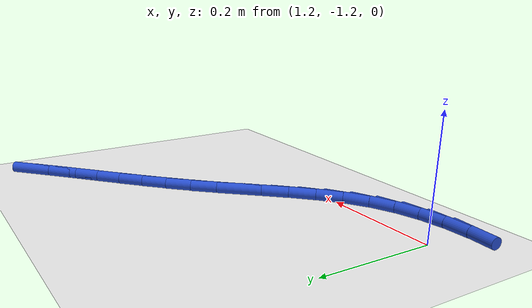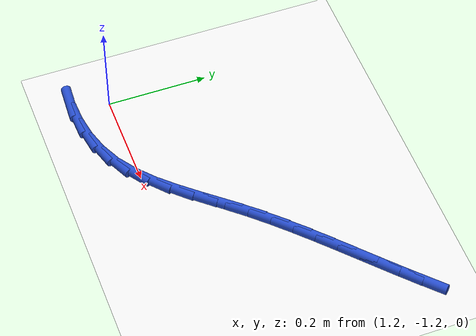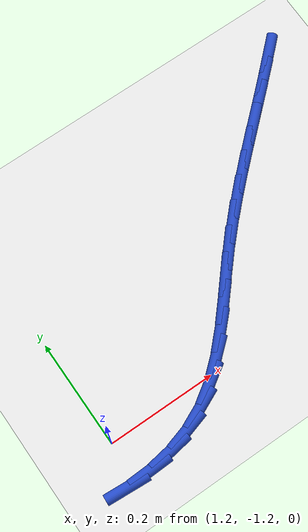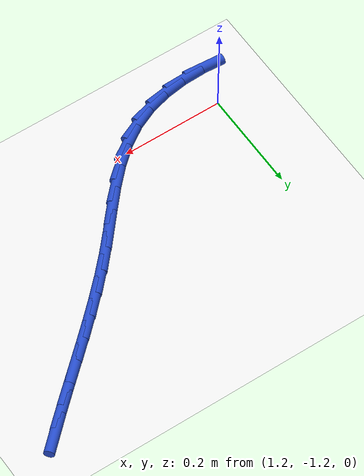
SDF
<sdf version="1.6">
 <world name="default">
  <model name="ground_plane">
   <static>1</static>
   <link name="link">
    <collision name="collision">
     <geometry><plane><normal>0 0 1</normal><size>100 100</size></plane></geometry>
     <surface><friction><ode><mu>100</mu><mu2>50</mu2></ode></friction></surface>
    </collision>
    <visual name="visual">
     <cast_shadows>0</cast_shadows>
     <geometry><plane><normal>0 0 1</normal><size>100 100</size></plane></geometry>
     <material>
      <script><uri>file://media/materials/scripts/gazebo.material</uri><name>Gazebo/WhiteGlow</name></script>
     </material>
    </visual>
   </link>
  </model>
  <model name="line">
   <link name="link_93">
    <pose>1.8208037211501102 -0.7848784728706968 0.01 0 1.57 0.7536164725874797</pose>
    <collision name="collision">
     <geometry><cylinder><radius>0.01</radius><length>0.08</length></cylinder></geometry>
    </collision>
    <visual name="visual">
     <material>
      <script><name>Gazebo/Blue</name><uri>file://media/materials/scripts/gazebo.material</uri></script>
     </material>
     <geometry><cylinder><radius>0.01</radius><length>0.08</length></cylinder></geometry>
    </visual>
   </link>
   <link name="link_94">
    <pose>1.7867566849743066 -0.816827341133086 0.01 0 1.57 0.7397805859282367</pose>
    <collision name="collision">
     <geometry><cylinder><radius>0.01</radius><length>0.08</length></cylinder></geometry>
    </collision>
    <visual name="visual">
     <material>
      <script><name>Gazebo/Blue</name><uri>file://media/materials/scripts/gazebo.material</uri></script>
     </material>
     <geometry><cylinder><radius>0.01</radius><length>0.08</length></cylinder></geometry>
    </visual>
   </link>
   <link name="link_95">
    <pose>1.7524807814564631 -0.848110521843757 0.01 0 1.57 0.7332172170764316</pose>
    <collision name="collision">
     <geometry><cylinder><radius>0.01</radius><length>0.08</length></cylinder></geometry>
    </collision>
    <visual name="visual">
     <material>
      <script><name>Gazebo/Blue</name><uri>file://media/materials/scripts/gazebo.material</uri></script>
     </material>
     <geometry><cylinder><radius>0.01</radius><length>0.08</length></cylinder></geometry>
    </visual>
   </link>
   <link name="link_96">
    <pose>1.718122458346188 -0.8790580286705238 0.01 0 1.57 0.7340538962717205</pose>
    <collision name="collision">
     <geometry><cylinder><radius>0.01</radius><length>0.08</length></cylinder></geometry>
    </collision>
    <visual name="visual">
     <material>
      <script><name>Gazebo/Blue</name><uri>file://media/materials/scripts/gazebo.material</uri></script>
     </material>
     <geometry><cylinder><radius>0.01</radius><length>0.08</length></cylinder></geometry>
    </visual>
   </link>
   <link name="link_97">
    <pose>1.6838281633930894 -0.9099998752812029 0.01 0 1.57 0.742309041039086</pose>
    <collision name="collision">
     <geometry><cylinder><radius>0.01</radius><length>0.08</length></cylinder></geometry>
    </collision>
    <visual name="visual">
     <material>
      <script><name>Gazebo/Blue</name><uri>file://media/materials/scripts/gazebo.material</uri></script>
     </material>
     <geometry><cylinder><radius>0.01</radius><length>0.08</length></cylinder></geometry>
    </visual>
   </link>
   <link name="link_98">
    <pose>1.6497443443467767 -0.9412660753436076 0.01 0 1.57 0.7578895212845036</pose>
    <collision name="collision">
     <geometry><cylinder><radius>0.01</radius><length>0.08</length></cylinder></geometry>
    </collision>
    <visual name="visual">
     <material>
      <script><name>Gazebo/Blue</name><uri>file://media/materials/scripts/gazebo.material</uri></script>
     </material>
     <geometry><cylinder><radius>0.01</radius><length>0.08</length></cylinder></geometry>
    </visual>
   </link>
   <link name="link_99">
    <pose>1.6160174489568573 -0.9731866425255541 0.01 0 1.57 0.7805806688951695</pose>
    <collision name="collision">
     <geometry><cylinder><radius>0.01</radius><length>0.08</length></cylinder></geometry>
    </collision>
    <visual name="visual">
     <material>
      <script><name>Gazebo/Blue</name><uri>file://media/materials/scripts/gazebo.material</uri></script>
     </material>
     <geometry><cylinder><radius>0.01</radius><length>0.08</length></cylinder></geometry>
    </visual>
   </link>
   <link name="link_100">
    <pose>1.5827939249729406 -1.0060915904948573 0.01 0 1.57 0.810031037694082</pose>
    <collision name="collision">
     <geometry><cylinder><radius>0.01</radius><length>0.08</length></cylinder></geometry>
    </collision>
    <visual name="visual">
     <material>
      <script><name>Gazebo/Blue</name><uri>file://media/materials/scripts/gazebo.material</uri></script>
     </material>
     <geometry><cylinder><radius>0.01</radius><length>0.08</length></cylinder></geometry>
    </visual>
   </link>
   <link name="link_101">
    <pose>1.5502202201446347 -1.0403109329193303 0.01 0 1.57 0.8437565230946052</pose>
    <collision name="collision">
     <geometry><cylinder><radius>0.01</radius><length>0.08</length></cylinder></geometry>
    </collision>
    <visual name="visual">
     <material>
      <script><name>Gazebo/Blue</name><uri>file://media/materials/scripts/gazebo.material</uri></script>
     </material>
     <geometry><cylinder><radius>0.01</radius><length>0.08</length></cylinder></geometry>
    </visual>
   </link>
   <link name="link_102">
    <pose>1.5184000310862724 -1.0760800042666325 0.01 0 1.57 0.8595282434499752</pose>
    <collision name="collision">
     <geometry><cylinder><radius>0.01</radius><length>0.08</length></cylinder></geometry>
    </collision>
    <visual name="visual">
     <material>
      <script><name>Gazebo/Blue</name><uri>file://media/materials/scripts/gazebo.material</uri></script>
     </material>
     <geometry><cylinder><radius>0.01</radius><length>0.08</length></cylinder></geometry>
    </visual>
   </link>
   <link name="link_103">
    <pose>1.4869561204220754 -1.1125690340611496 0.01 0 1.57 0.844048366345008</pose>
    <collision name="collision">
     <geometry><cylinder><radius>0.01</radius><length>0.08</length></cylinder></geometry>
    </collision>
    <visual name="visual">
     <material>
      <script><name>Gazebo/Blue</name><uri>file://media/materials/scripts/gazebo.material</uri></script>
     </material>
     <geometry><cylinder><radius>0.01</radius><length>0.08</length></cylinder></geometry>
    </visual>
   </link>
   <link name="link_104">
    <pose>1.4552084248071078 -1.1482775954724844 0.01 0 1.57 0.7956911512513127</pose>
    <collision name="collision">
     <geometry><cylinder><radius>0.01</radius><length>0.08</length></cylinder></geometry>
    </collision>
    <visual name="visual">
     <material>
      <script><name>Gazebo/Blue</name><uri>file://media/materials/scripts/gazebo.material</uri></script>
     </material>
     <geometry><cylinder><radius>0.01</radius><length>0.08</length></cylinder></geometry>
    </visual>
   </link>
   <link name="link_105">
    <pose>1.4224721583628384 -1.181694802867205 0.01 0 1.57 0.7106499721320372</pose>
    <collision name="collision">
     <geometry><cylinder><radius>0.01</radius><length>0.08</length></cylinder></geometry>
    </collision>
    <visual name="visual">
     <material>
      <script><name>Gazebo/Blue</name><uri>file://media/materials/scripts/gazebo.material</uri></script>
     </material>
     <geometry><cylinder><radius>0.01</radius><length>0.08</length></cylinder></geometry>
    </visual>
   </link>
   <link name="link_106">
    <pose>1.3880625352107379 -1.2113097706118758 0.01 0 1.57 0.5841700503967261</pose>
    <collision name="collision">
     <geometry><cylinder><radius>0.01</radius><length>0.08</length></cylinder></geometry>
    </collision>
    <visual name="visual">
     <material>
      <script><name>Gazebo/Blue</name><uri>file://media/materials/scripts/gazebo.material</uri></script>
     </material>
     <geometry><cylinder><radius>0.01</radius><length>0.08</length></cylinder></geometry>
    </visual>
   </link>
   <link name="link_107">
    <pose>1.35129756981145 -1.235616737704572 0.01 0 1.57 0.4299467180695777</pose>
    <collision name="collision">
     <geometry><cylinder><radius>0.01</radius><length>0.08</length></cylinder></geometry>
    </collision>
    <visual name="visual">
     <material>
      <script><name>Gazebo/Blue</name><uri>file://media/materials/scripts/gazebo.material</uri></script>
     </material>
     <geometry><cylinder><radius>0.01</radius><length>0.08</length></cylinder></geometry>
    </visual>
   </link>
   <link name="link_108">
    <pose>1.311826662354591 -1.2537163803074627 0.01 0 1.57 0.28261082573979307</pose>
    <collision name="collision">
     <geometry><cylinder><radius>0.01</radius><length>0.08</length></cylinder></geometry>
    </collision>
    <visual name="visual">
     <material>
      <script><name>Gazebo/Blue</name><uri>file://media/materials/scripts/gazebo.material</uri></script>
     </material>
     <geometry><cylinder><radius>0.01</radius><length>0.08</length></cylinder></geometry>
    </visual>
   </link>
   <link name="link_109">
    <pose>1.2699388420276654 -1.2658798981196135 0.01 0 1.57 0.14979464099944065</pose>
    <collision name="collision">
     <geometry><cylinder><radius>0.01</radius><length>0.08</length></cylinder></geometry>
    </collision>
    <visual name="visual">
     <material>
      <script><name>Gazebo/Blue</name><uri>file://media/materials/scripts/gazebo.material</uri></script>
     </material>
     <geometry><cylinder><radius>0.01</radius><length>0.08</length></cylinder></geometry>
    </visual>
   </link>
   <link name="link_110">
    <pose>1.2259960760679849 -1.2725119677529906 0.01 0 1.57 0.03297311165135342</pose>
    <collision name="collision">
     <geometry><cylinder><radius>0.01</radius><length>0.08</length></cylinder></geometry>
    </collision>
    <visual name="visual">
     <material>
      <script><name>Gazebo/Blue</name><uri>file://media/materials/scripts/gazebo.material</uri></script>
     </material>
     <geometry><cylinder><radius>0.01</radius><length>0.08</length></cylinder></geometry>
    </visual>
   </link>
   <link name="link_111">
    <pose>1.1803603317128661 -1.2740172658195612 0.01 0 1.57 -0.06838413590414293</pose>
    <collision name="collision">
     <geometry><cylinder><radius>0.01</radius><length>0.08</length></cylinder></geometry>
    </collision>
    <visual name="visual">
     <material>
      <script><name>Gazebo/Blue</name><uri>file://media/materials/scripts/gazebo.material</uri></script>
     </material>
     <geometry><cylinder><radius>0.01</radius><length>0.08</length></cylinder></geometry>
    </visual>
   </link>
  </model>
 </world>
</sdf>
